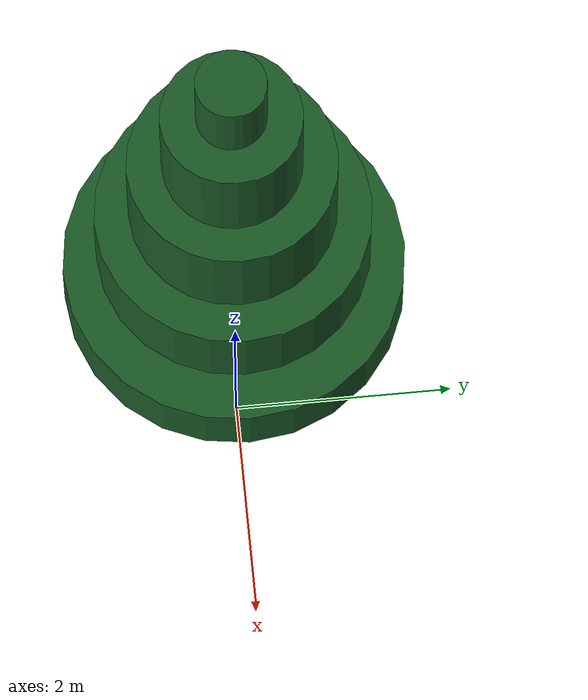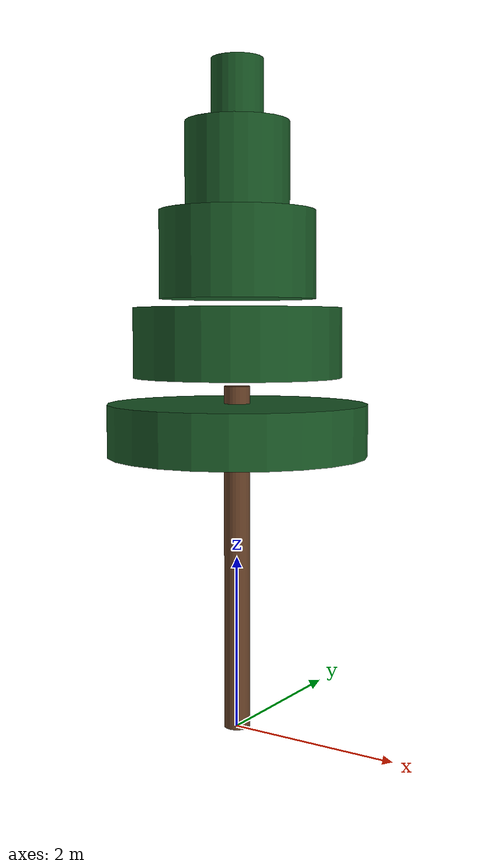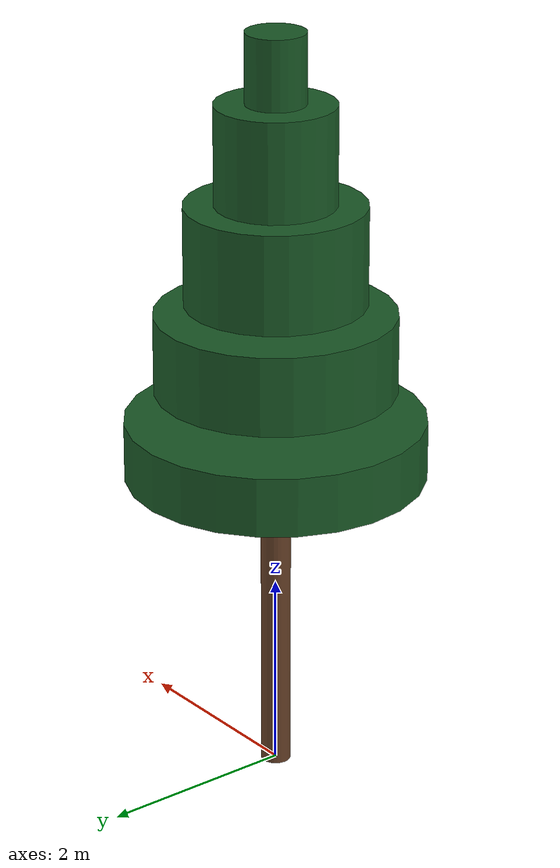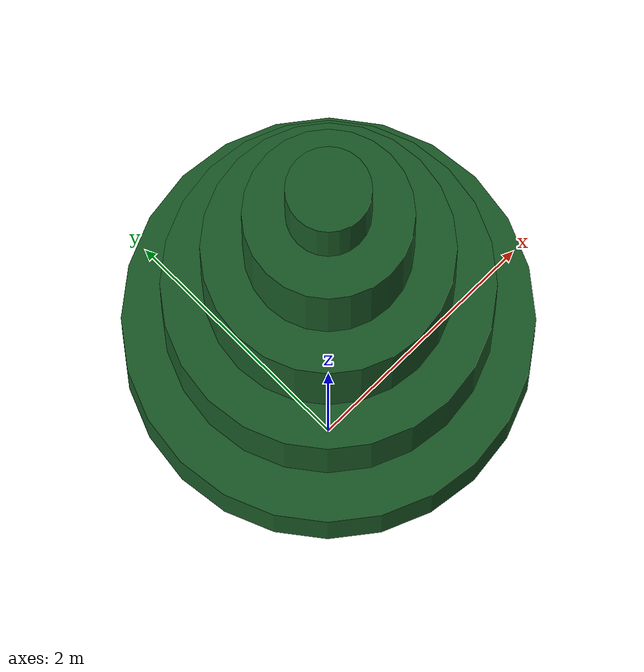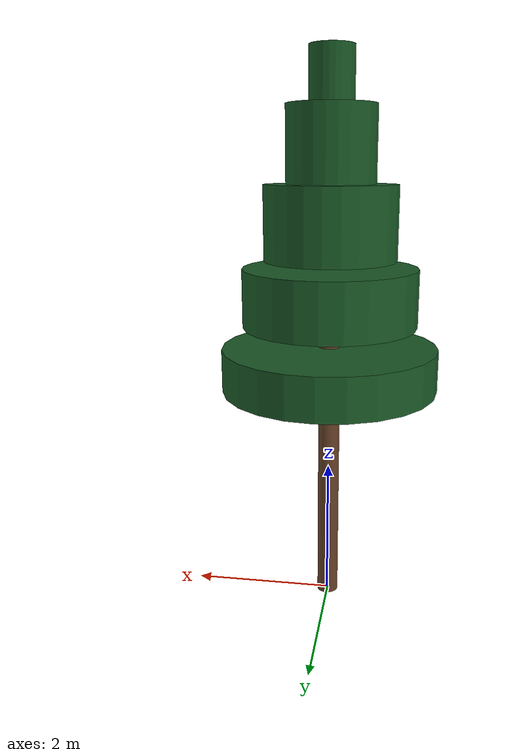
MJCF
<mujoco>
  <!-- Pine/Conifer tree -->
  <asset>
    <material name="pine_trunk" rgba="0.4 0.25 0.15 1"/>
    <material name="pine_foliage" rgba="0.1 0.35 0.15 1"/>
  </asset>

  <worldbody>
    <body name="pine_tree_root">
      <!-- Trunk -->
      <geom name="trunk" type="cylinder" size="0.15 2.0" pos="0 0 2.0" material="pine_trunk"/>

      <!-- Foliage layers (cone shape) -->
      <geom name="foliage_1" type="cylinder" size="1.5 0.3" pos="0 0 3.5" material="pine_foliage"/>
      <geom name="foliage_2" type="cylinder" size="1.2 0.4" pos="0 0 4.5" material="pine_foliage"/>
      <geom name="foliage_3" type="cylinder" size="0.9 0.5" pos="0 0 5.5" material="pine_foliage"/>
      <geom name="foliage_4" type="cylinder" size="0.6 0.5" pos="0 0 6.5" material="pine_foliage"/>
      <geom name="foliage_5" type="cylinder" size="0.3 0.4" pos="0 0 7.3" material="pine_foliage"/>
    </body>
  </worldbody>
</mujoco>
